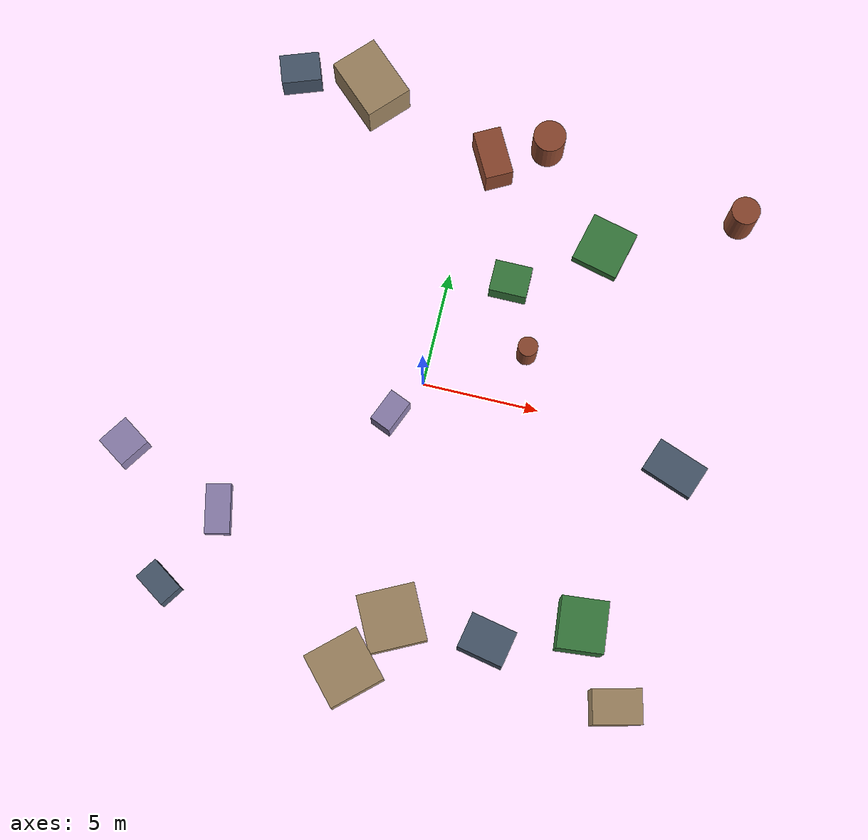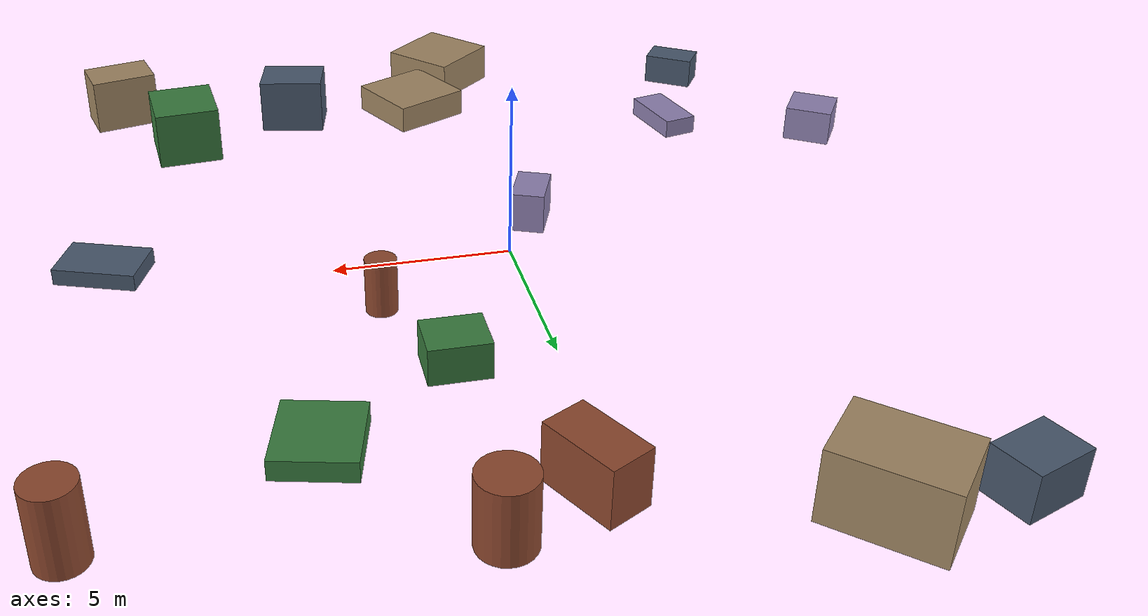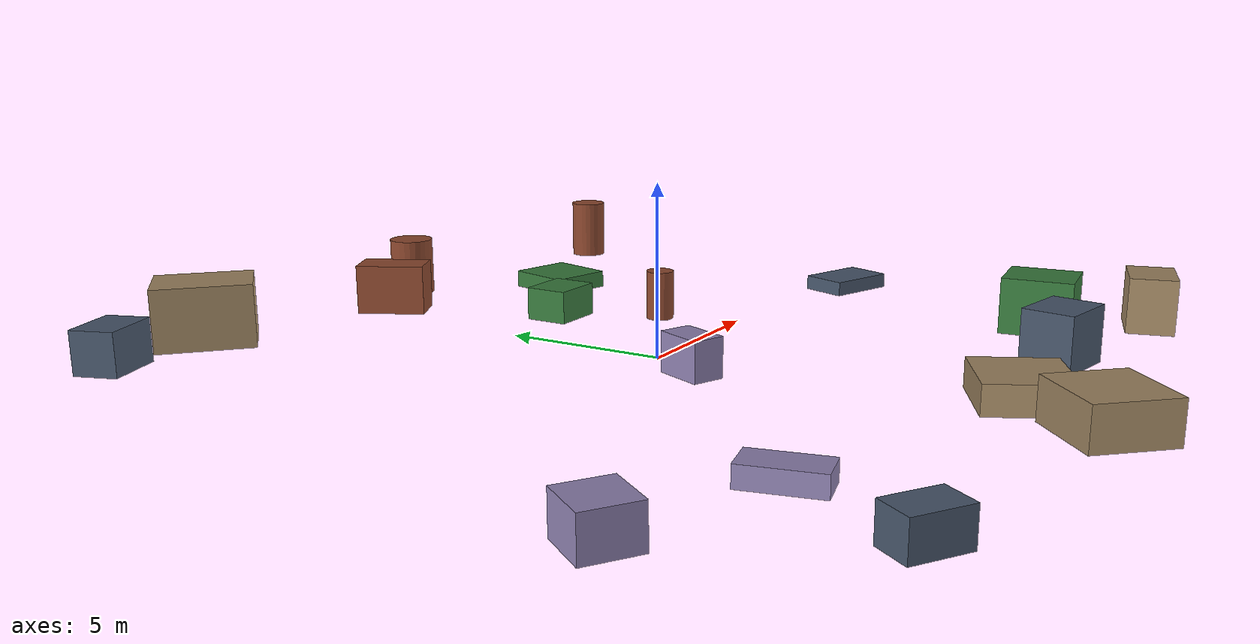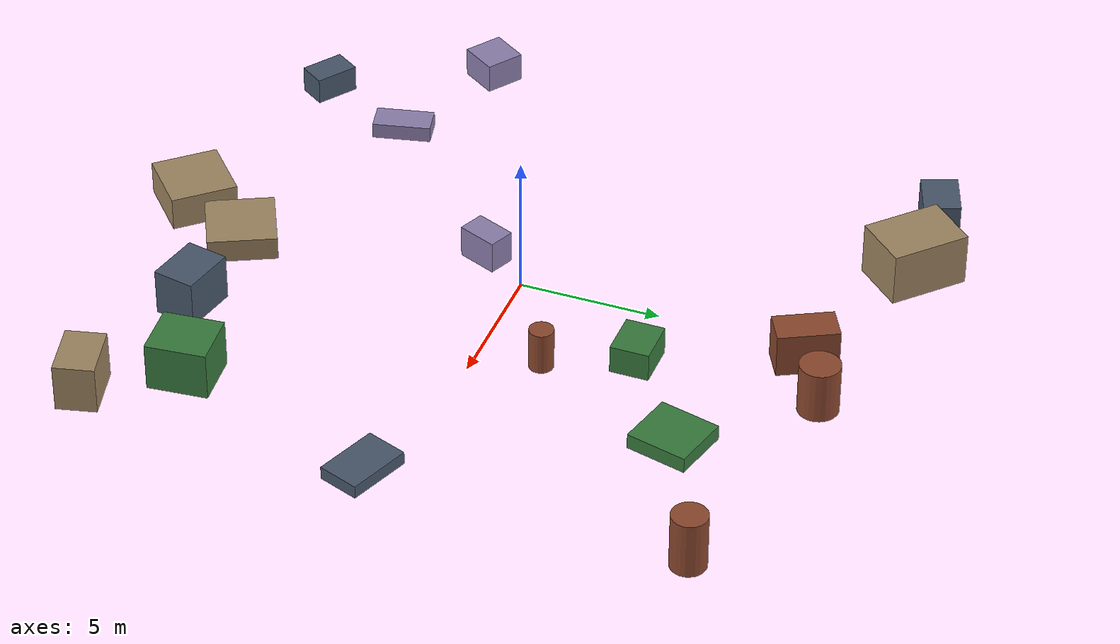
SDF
<sdf version="1.10">
 <world name="robotx_task1_uav_view">
  <gravity>0 0 -9.81</gravity>
  <physics name="physics" type="ode">
   <max_step_size>0.002</max_step_size>
   <real_time_factor>1.0</real_time_factor>
  </physics>
  <scene>
   <ambient>0.27 0.27 0.27 1.0</ambient>
   <background>0.62 0.75 0.92 1.0</background>
   <shadows>true</shadows>
   <grid>false</grid>
  </scene>
  <light name="sun" type="directional">
   <pose>0 0 300 0 0 0</pose>
   <diffuse>1.00 0.98 0.94 1.0</diffuse>
   <specular>1.00 1.00 1.00 1.0</specular>
   <direction>0.26 -0.12 -1.0</direction>
   <attenuation>
    <range>2500</range>
    <constant>0.85</constant>
    <linear>0.001</linear>
    <quadratic>0.00005</quadratic>
   </attenuation>
  </light>
  <plugin filename="gz-sim-physics-system" name="gz::sim::systems::Physics"/>
  <plugin filename="gz-sim-user-commands-system" name="gz::sim::systems::UserCommands"/>
  <plugin filename="gz-sim-scene-broadcaster-system" name="gz::sim::systems::SceneBroadcaster"/>
  <plugin filename="gz-sim-sensors-system" name="gz::sim::systems::Sensors">
   <render_engine>ogre2</render_engine>
  </plugin>
  <model name="scene_clutter_box_000">
   <static>true</static>
   <pose>-0.339 -12.420 0.624 0 0 0.735276</pose>
   <link name="link">
    <visual name="v">
     <geometry><box><size>2.425 2.378 1.209</size></box></geometry>
     <material><ambient>0.45 0.38 0.32 1.0</ambient><diffuse>0.62 0.52 0.38 1.0</diffuse></material>
    </visual>
   </link>
  </model>
  <model name="scene_clutter_box_001">
   <static>true</static>
   <pose>11.138 -1.183 0.254 0 0 -0.355421</pose>
   <link name="link">
    <visual name="v">
     <geometry><box><size>2.315 1.508 0.467</size></box></geometry>
     <material><ambient>0.18 0.22 0.28 1.0</ambient><diffuse>0.28 0.34 0.42 1.0</diffuse></material>
    </visual>
   </link>
  </model>
  <model name="scene_clutter_cyl_002">
   <static>true</static>
   <pose>11.716 10.095 1.068 0 0 1.481763</pose>
   <link name="link">
    <visual name="v">
     <geometry><cylinder><radius>0.619</radius><length>2.036</length></cylinder></geometry>
     <material><ambient>0.35 0.16 0.12 1.0</ambient><diffuse>0.55 0.28 0.18 1.0</diffuse></material>
    </visual>
   </link>
  </model>
  <model name="scene_clutter_box_003">
   <static>true</static>
   <pose>6.244 7.680 0.296 0 0 2.895502</pose>
   <link name="link">
    <visual name="v">
     <geometry><box><size>2.067 2.197 0.553</size></box></geometry>
     <material><ambient>0.12 0.30 0.14 1.0</ambient><diffuse>0.22 0.48 0.24 1.0</diffuse></material>
    </visual>
   </link>
  </model>
  <model name="scene_clutter_box_004">
   <static>true</static>
   <pose>-11.550 -5.501 0.555 0 0 -2.161889</pose>
   <link name="link">
    <visual name="v">
     <geometry><box><size>1.445 1.431 1.069</size></box></geometry>
     <material><ambient>0.40 0.35 0.50 1.0</ambient><diffuse>0.55 0.50 0.68 1.0</diffuse></material>
    </visual>
   </link>
  </model>
  <model name="scene_clutter_box_005">
   <static>true</static>
   <pose>10.679 -11.414 0.876 0 0 0.239250</pose>
   <link name="link">
    <visual name="v">
     <geometry><box><size>2.020 1.422 1.713</size></box></geometry>
     <material><ambient>0.45 0.38 0.32 1.0</ambient><diffuse>0.62 0.52 0.38 1.0</diffuse></material>
    </visual>
   </link>
  </model>
  <model name="scene_clutter_box_006">
   <static>true</static>
   <pose>-8.584 -10.812 0.501 0 0 2.550991</pose>
   <link name="link">
    <visual name="v">
     <geometry><box><size>1.580 1.041 0.963</size></box></geometry>
     <material><ambient>0.18 0.22 0.28 1.0</ambient><diffuse>0.28 0.34 0.42 1.0</diffuse></material>
    </visual>
   </link>
  </model>
  <model name="scene_clutter_box_007">
   <static>true</static>
   <pose>0.634 10.367 0.802 0 0 -2.655069</pose>
   <link name="link">
    <visual name="v">
     <geometry><box><size>1.221 2.151 1.563</size></box></geometry>
     <material><ambient>0.35 0.16 0.12 1.0</ambient><diffuse>0.55 0.28 0.18 1.0</diffuse></material>
    </visual>
   </link>
  </model>
  <model name="scene_clutter_box_008">
   <static>true</static>
   <pose>8.665 -8.565 0.882 0 0 -1.476570</pose>
   <link name="link">
    <visual name="v">
     <geometry><box><size>2.138 1.947 1.725</size></box></geometry>
     <material><ambient>0.12 0.30 0.14 1.0</ambient><diffuse>0.22 0.48 0.24 1.0</diffuse></material>
    </visual>
   </link>
  </model>
  <model name="scene_clutter_box_009">
   <static>true</static>
   <pose>-1.018 -1.671 0.606 0 0 2.745434</pose>
   <link name="link">
    <visual name="v">
     <geometry><box><size>0.965 1.481 1.172</size></box></geometry>
     <material><ambient>0.40 0.35 0.50 1.0</ambient><diffuse>0.55 0.50 0.68 1.0</diffuse></material>
    </visual>
   </link>
  </model>
  <model name="scene_clutter_box_010">
   <static>true</static>
   <pose>1.060 -10.012 0.442 0 0 -1.110064</pose>
   <link name="link">
    <visual name="v">
     <geometry><box><size>2.440 2.454 0.845</size></box></geometry>
     <material><ambient>0.45 0.38 0.32 1.0</ambient><diffuse>0.62 0.52 0.38 1.0</diffuse></material>
    </visual>
   </link>
  </model>
  <model name="scene_clutter_box_011">
   <static>true</static>
   <pose>5.044 -10.042 0.861 0 0 1.370721</pose>
   <link name="link">
    <visual name="v">
     <geometry><box><size>1.517 1.981 1.683</size></box></geometry>
     <material><ambient>0.18 0.22 0.28 1.0</ambient><diffuse>0.28 0.34 0.42 1.0</diffuse></material>
    </visual>
   </link>
  </model>
  <model name="scene_clutter_cyl_012">
   <static>true</static>
   <pose>2.864 11.549 0.979 0 0 2.213845</pose>
   <link name="link">
    <visual name="v">
     <geometry><cylinder><radius>0.709</radius><length>1.858</length></cylinder></geometry>
     <material><ambient>0.35 0.16 0.12 1.0</ambient><diffuse>0.55 0.28 0.18 1.0</diffuse></material>
    </visual>
   </link>
  </model>
  <model name="scene_clutter_box_013">
   <static>true</static>
   <pose>2.623 5.156 0.532 0 0 3.138656</pose>
   <link name="link">
    <visual name="v">
     <geometry><box><size>1.629 1.372 1.023</size></box></geometry>
     <material><ambient>0.12 0.30 0.14 1.0</ambient><diffuse>0.22 0.48 0.24 1.0</diffuse></material>
    </visual>
   </link>
  </model>
  <model name="scene_clutter_box_014">
   <static>true</static>
   <pose>-7.065 -7.260 0.305 0 0 -2.918124</pose>
   <link name="link">
    <visual name="v">
     <geometry><box><size>1.055 2.091 0.569</size></box></geometry>
     <material><ambient>0.40 0.35 0.50 1.0</ambient><diffuse>0.55 0.50 0.68 1.0</diffuse></material>
    </visual>
   </link>
  </model>
  <model name="scene_clutter_box_015">
   <static>true</static>
   <pose>-5.287 12.410 0.969 0 0 2.390306</pose>
   <link name="link">
    <visual name="v">
     <geometry><box><size>2.848 2.106 1.898</size></box></geometry>
     <material><ambient>0.45 0.38 0.32 1.0</ambient><diffuse>0.62 0.52 0.38 1.0</diffuse></material>
    </visual>
   </link>
  </model>
  <model name="scene_clutter_box_016">
   <static>true</static>
   <pose>-8.518 12.387 0.666 0 0 0.344418</pose>
   <link name="link">
    <visual name="v">
     <geometry><box><size>1.738 1.310 1.291</size></box></geometry>
     <material><ambient>0.18 0.22 0.28 1.0</ambient><diffuse>0.28 0.34 0.42 1.0</diffuse></material>
    </visual>
   </link>
  </model>
  <model name="scene_clutter_cyl_017">
   <static>true</static>
   <pose>3.990 2.255 0.813 0 0 1.117886</pose>
   <link name="link">
    <visual name="v">
     <geometry><cylinder><radius>0.428</radius><length>1.527</length></cylinder></geometry>
     <material><ambient>0.35 0.16 0.12 1.0</ambient><diffuse>0.55 0.28 0.18 1.0</diffuse></material>
    </visual>
   </link>
  </model>
  <model name="uav_dataset_camera">
   <static>false</static>
   <pose>0 0 26 0 0 0</pose>
   <plugin filename="librobotx_overhead_motion_plugin.dylib" name="robotx::OverheadMotionPlugin">
    <radius_x_m>10.21959</radius_x_m>
    <radius_y_m>10.01334</radius_y_m>
    <angular_speed_rad_s>0.045258</angular_speed_rad_s>
    <phase_rad>2.269006</phase_rad>
    <z_wobble_m>0.03932</z_wobble_m>
    <z_wobble_hz>0.04457</z_wobble_hz>
    <z_wobble_phase_rad>1.535061</z_wobble_phase_rad>
   </plugin>
   <link name="camera_link">
    <gravity>false</gravity>
    <sensor name="top_down_rgb" type="camera">
     <always_on>true</always_on>
     <update_rate>20</update_rate>
     <pose>0 0 0 0 1.57079632679 0</pose>
     <camera>
      <horizontal_fov>1.05</horizontal_fov>
      <image><width>1920</width><height>1080</height><format>R8G8B8</format></image>
      <clip><near>0.2</near><far>600</far></clip>
     </camera>
     <topic>/robotx/uav/camera/image_raw</topic>
     <visualize>true</visualize>
    </sensor>
   </link>
  </model>
 </world>
</sdf>
